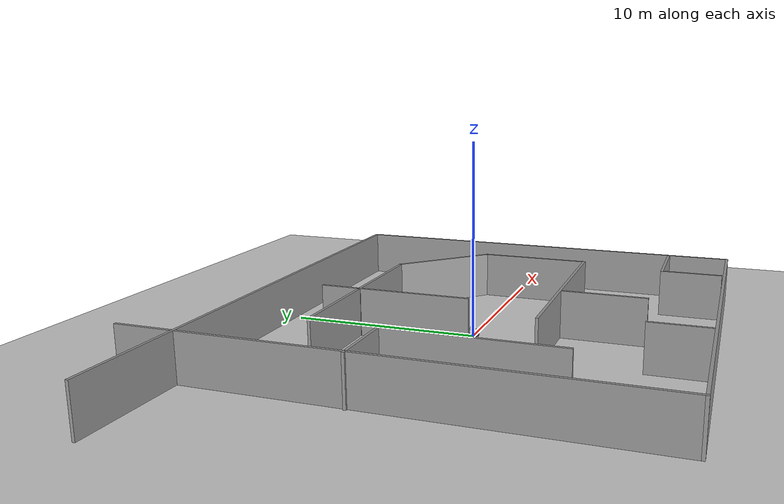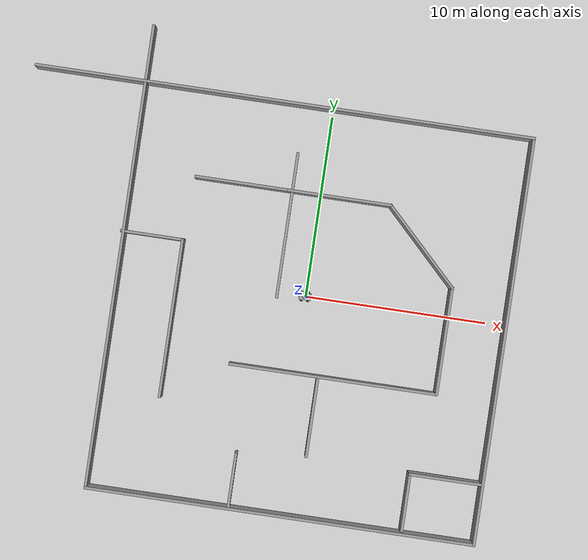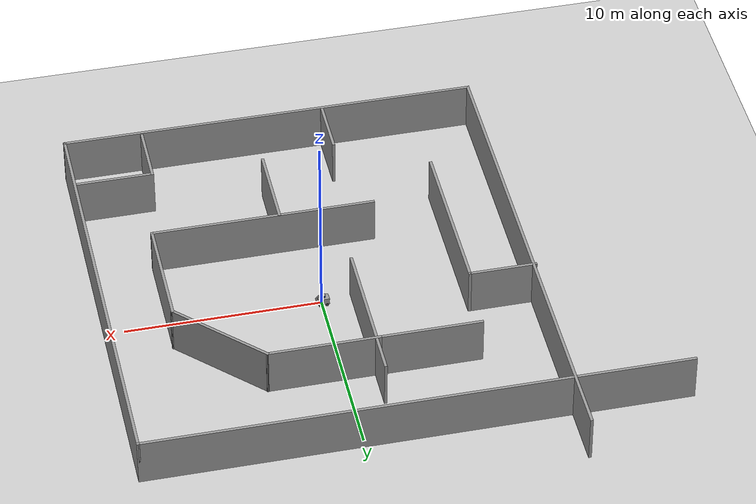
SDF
<sdf version="1.6">
 <arg name="world_name" value="$(find chetak_wc_description)/worlds/trial1.world"/>
 <world name="default">
  <light name="sun" type="directional">
   <pose>0 0 10 0 -0 0</pose>
   <diffuse>0.8 0.8 0.8 1</diffuse>
   <specular>0.2 0.2 0.2 1</specular>
   <attenuation>
    <range>1000</range>
    <constant>0.9</constant>
    <linear>0.01</linear>
    <quadratic>0.001</quadratic>
   </attenuation>
   <direction>-0.5 0.1 -0.9</direction>
  </light>
  <model name="ground_plane">
   <static>1</static>
   <link name="link">
    <collision name="collision">
     <geometry><plane><normal>0 0 1</normal><size>100 100</size></plane></geometry>
     <surface>
      <contact><collide_bitmask>65535</collide_bitmask></contact>
      <friction><ode><mu>100</mu><mu2>50</mu2></ode></friction>
     </surface>
    </collision>
    <visual name="visual">
     <cast_shadows>0</cast_shadows>
     <geometry><plane><normal>0 0 1</normal><size>100 100</size></plane></geometry>
     <material>
      <script><uri>file://media/materials/scripts/gazebo.material</uri><name>Gazebo/Grey</name></script>
     </material>
    </visual>
   </link>
  </model>
  <gravity>0 0 -9.8</gravity>
  <magnetic_field>6e-06 2.3e-05 -4.2e-05</magnetic_field>
  <atmosphere type="adiabatic"/>
  <physics name="default_physics" default="0" type="ode">
   <max_step_size>0.001</max_step_size>
   <real_time_factor>1</real_time_factor>
   <real_time_update_rate>1000</real_time_update_rate>
  </physics>
  <scene><ambient>0.4 0.4 0.4 1</ambient><background>0.7 0.7 0.7 1</background><shadows>1</shadows></scene>
  <audio><device>default</device></audio>
  <spherical_coordinates>
   <surface_model>EARTH_WGS84</surface_model>
   <latitude_deg>0</latitude_deg>
   <longitude_deg>0</longitude_deg>
   <elevation>0</elevation>
   <heading_deg>0</heading_deg>
  </spherical_coordinates>
  <model name="chetak_wc">
   <link name="base_link">
    <inertial>
     <pose>-0.36131 0.199977 0.277186 0 -0 0</pose>
     <mass>42.0188</mass>
     <inertia>
      <ixx>17.1146</ixx>
      <ixy>0.000253251</ixy>
      <ixz>0.679878</ixz>
      <iyy>28.5189</iyy>
      <iyz>2.14807e-05</iyz>
      <izz>29.9949</izz>
     </inertia>
    </inertial>
    <collision name="base_link_collision">
     <geometry>
      <mesh>
       <scale>0.001 0.001 0.001</scale>
       <uri>/home/sagar/catkin_ws/src/chetak_wc_description/meshes/base_link.stl</uri>
      </mesh>
     </geometry>
     <surface><friction><ode><mu>0.2</mu><mu2>0.2</mu2></ode></friction></surface>
    </collision>
    <collision name="base_link_fixed_joint_lump__uvc_rod__1_collision_1">
     <geometry>
      <mesh>
       <scale>0.001 0.001 0.001</scale>
       <uri>/home/sagar/catkin_ws/src/chetak_wc_description/meshes/uvc_rod__1.stl</uri>
      </mesh>
     </geometry>
     <surface><friction><ode><mu>0.2</mu><mu2>0.2</mu2></ode></friction></surface>
    </collision>
    <collision name="base_link_fixed_joint_lump__uvc_plate_1_collision_2">
     <geometry>
      <mesh>
       <scale>0.001 0.001 0.001</scale>
       <uri>/home/sagar/catkin_ws/src/chetak_wc_description/meshes/uvc_plate_1.stl</uri>
      </mesh>
     </geometry>
     <surface><friction><ode><mu>0.2</mu><mu2>0.2</mu2></ode></friction></surface>
    </collision>
    <collision name="base_link_fixed_joint_lump__lidar_1_collision_3">
     <geometry>
      <mesh>
       <scale>0.001 0.001 0.001</scale>
       <uri>/home/sagar/catkin_ws/src/chetak_wc_description/meshes/lidar_1.stl</uri>
      </mesh>
     </geometry>
     <surface><friction><ode><mu>0.2</mu><mu2>0.2</mu2></ode></friction></surface>
    </collision>
    <collision name="base_link_fixed_joint_lump__camera_1_collision_4">
     <geometry>
      <mesh>
       <scale>0.001 0.001 0.001</scale>
       <uri>/home/sagar/catkin_ws/src/chetak_wc_description/meshes/camera_1.stl</uri>
      </mesh>
     </geometry>
     <surface><friction><ode><mu>0.2</mu><mu2>0.2</mu2></ode></friction></surface>
    </collision>
    <collision name="base_link_fixed_joint_lump__name_1_collision_5">
     <geometry>
      <mesh>
       <scale>0.001 0.001 0.001</scale>
       <uri>/home/sagar/catkin_ws/src/chetak_wc_description/meshes/name_1.stl</uri>
      </mesh>
     </geometry>
     <surface><friction><ode><mu>0.2</mu><mu2>0.2</mu2></ode></friction></surface>
    </collision>
    <visual name="base_link_visual">
     <geometry>
      <mesh>
       <scale>0.001 0.001 0.001</scale>
       <uri>/home/sagar/catkin_ws/src/chetak_wc_description/meshes/base_link.stl</uri>
      </mesh>
     </geometry>
     <material>
      <script><name>Gazebo/Grey</name><uri>file://media/materials/scripts/gazebo.material</uri></script>
     </material>
    </visual>
    <visual name="base_link_fixed_joint_lump__uvc_rod__1_visual_1">
     <geometry>
      <mesh>
       <scale>0.001 0.001 0.001</scale>
       <uri>/home/sagar/catkin_ws/src/chetak_wc_description/meshes/uvc_rod__1.stl</uri>
      </mesh>
     </geometry>
     <material>
      <script><name>Gazebo/BlueGlow</name><uri>file://media/materials/scripts/gazebo.material</uri></script>
     </material>
    </visual>
    <visual name="base_link_fixed_joint_lump__uvc_plate_1_visual_2">
     <geometry>
      <mesh>
       <scale>0.001 0.001 0.001</scale>
       <uri>/home/sagar/catkin_ws/src/chetak_wc_description/meshes/uvc_plate_1.stl</uri>
      </mesh>
     </geometry>
     <material>
      <script><name>Gazebo/Grey</name><uri>file://media/materials/scripts/gazebo.material</uri></script>
     </material>
    </visual>
    <visual name="base_link_fixed_joint_lump__lidar_1_visual_3">
     <geometry>
      <mesh>
       <scale>0.001 0.001 0.001</scale>
       <uri>/home/sagar/catkin_ws/src/chetak_wc_description/meshes/lidar_1.stl</uri>
      </mesh>
     </geometry>
     <material>
      <script><name>Gazebo/White</name><uri>file://media/materials/scripts/gazebo.material</uri></script>
     </material>
    </visual>
    <visual name="base_link_fixed_joint_lump__camera_1_visual_4">
     <geometry>
      <mesh>
       <scale>0.001 0.001 0.001</scale>
       <uri>/home/sagar/catkin_ws/src/chetak_wc_description/meshes/camera_1.stl</uri>
      </mesh>
     </geometry>
     <material>
      <script><name>Gazebo/White</name><uri>file://media/materials/scripts/gazebo.material</uri></script>
     </material>
    </visual>
    <visual name="base_link_fixed_joint_lump__name_1_visual_5">
     <geometry>
      <mesh>
       <scale>0.001 0.001 0.001</scale>
       <uri>/home/sagar/catkin_ws/src/chetak_wc_description/meshes/name_1.stl</uri>
      </mesh>
     </geometry>
     <material>
      <script><name>Gazebo/White</name><uri>file://media/materials/scripts/gazebo.material</uri></script>
     </material>
    </visual>
    <sensor name="Lidar" type="gpu_ray">
     <visualize>1</visualize>
     <update_rate>40</update_rate>
     <ray>
      <scan>
       <horizontal>
        <samples>720</samples>
        <resolution>1</resolution>
        <min_angle>-1.5708</min_angle>
        <max_angle>1.5708</max_angle>
       </horizontal>
      </scan>
      <range><min>0.1</min><max>30</max><resolution>0.01</resolution></range>
      <noise><type>gaussian</type><mean>0</mean><stddev>0.01</stddev></noise>
     </ray>
     <plugin name="gazebo_ros_head_hokuyo_controller" filename="libgazebo_ros_gpu_laser.so">
      <topicName>/scan</topicName>
      <frameName>lidar_1</frameName>
      <robotNamespace>/</robotNamespace>
     </plugin>
     <pose>-0.015464 0.2 0.156443 0 -0 0</pose>
    </sensor>
    <self_collide>1</self_collide>
   </link>
   <link name="b_l_1">
    <pose>-0.525 0.48 0.075 0 -0 0</pose>
    <inertial>
     <pose>-0 -0.014828 0.000345 0 -0 0</pose>
     <mass>4.02291</mass>
     <inertia>
      <ixx>0.00623</ixx>
      <ixy>-0</ixy>
      <ixz>-0</ixz>
      <iyy>0.011756</iyy>
      <iyz>-3.4e-05</iyz>
      <izz>0.006161</izz>
     </inertia>
    </inertial>
    <collision name="b_l_1_collision">
     <pose>0.525 -0.48 -0.075 0 -0 0</pose>
     <geometry>
      <mesh>
       <scale>0.001 0.001 0.001</scale>
       <uri>/home/sagar/catkin_ws/src/chetak_wc_description/meshes/b_l_1.stl</uri>
      </mesh>
     </geometry>
     <surface><friction><ode><mu>0.2</mu><mu2>0.2</mu2></ode></friction></surface>
    </collision>
    <visual name="b_l_1_visual">
     <pose>0.525 -0.48 -0.075 0 -0 0</pose>
     <geometry>
      <mesh>
       <scale>0.001 0.001 0.001</scale>
       <uri>/home/sagar/catkin_ws/src/chetak_wc_description/meshes/b_l_1.stl</uri>
      </mesh>
     </geometry>
     <material>
      <script><name>Gazebo/DarkGrey</name><uri>file://media/materials/scripts/gazebo.material</uri></script>
     </material>
    </visual>
    <self_collide>1</self_collide>
   </link>
   <joint name="Rev10" type="revolute">
    <child>b_l_1</child>
    <parent>base_link</parent>
    <axis>
     <xyz>0 -1 0</xyz>
     <limit><lower>-1e+16</lower><upper>1e+16</upper></limit>
     <dynamics><spring_reference>0</spring_reference><spring_stiffness>0</spring_stiffness></dynamics>
     <use_parent_model_frame>1</use_parent_model_frame>
    </axis>
   </joint>
   <link name="b_r_1">
    <pose>-0.525 -0.08 0.075 0 -0 0</pose>
    <inertial>
     <pose>-0 0.014828 0.000345 0 -0 0</pose>
     <mass>4.02291</mass>
     <inertia>
      <ixx>0.00623</ixx>
      <ixy>0</ixy>
      <ixz>-0</ixz>
      <iyy>0.011756</iyy>
      <iyz>3.4e-05</iyz>
      <izz>0.006161</izz>
     </inertia>
    </inertial>
    <collision name="b_r_1_collision">
     <pose>0.525 0.08 -0.075 0 -0 0</pose>
     <geometry>
      <mesh>
       <scale>0.001 0.001 0.001</scale>
       <uri>/home/sagar/catkin_ws/src/chetak_wc_description/meshes/b_r_1.stl</uri>
      </mesh>
     </geometry>
     <surface><friction><ode><mu>0.2</mu><mu2>0.2</mu2></ode></friction></surface>
    </collision>
    <visual name="b_r_1_visual">
     <pose>0.525 0.08 -0.075 0 -0 0</pose>
     <geometry>
      <mesh>
       <scale>0.001 0.001 0.001</scale>
       <uri>/home/sagar/catkin_ws/src/chetak_wc_description/meshes/b_r_1.stl</uri>
      </mesh>
     </geometry>
     <material>
      <script><name>Gazebo/DarkGrey</name><uri>file://media/materials/scripts/gazebo.material</uri></script>
     </material>
    </visual>
    <self_collide>1</self_collide>
   </link>
   <joint name="Rev7" type="revolute">
    <child>b_r_1</child>
    <parent>base_link</parent>
    <axis>
     <xyz>0 -1 0</xyz>
     <limit><lower>-1e+16</lower><upper>1e+16</upper></limit>
     <dynamics><spring_reference>0</spring_reference><spring_stiffness>0</spring_stiffness></dynamics>
     <use_parent_model_frame>1</use_parent_model_frame>
    </axis>
   </joint>
   <link name="f_l_1">
    <pose>-0.175 0.48 0.075 0 -0 0</pose>
    <inertial>
     <pose>-0 -0.024855 0.000207 0 -0 0</pose>
     <mass>6.68635</mass>
     <inertia>
      <ixx>0.01123</ixx>
      <ixy>-0</ixy>
      <ixz>-0</ixz>
      <iyy>0.019546</iyy>
      <iyz>-4.8e-05</iyz>
      <izz>0.011161</izz>
     </inertia>
    </inertial>
    <collision name="f_l_1_collision">
     <pose>0.175 -0.48 -0.075 0 -0 0</pose>
     <geometry>
      <mesh>
       <scale>0.001 0.001 0.001</scale>
       <uri>/home/sagar/catkin_ws/src/chetak_wc_description/meshes/f_l_1.stl</uri>
      </mesh>
     </geometry>
     <surface><friction><ode><mu>0.2</mu><mu2>0.2</mu2></ode></friction></surface>
    </collision>
    <visual name="f_l_1_visual">
     <pose>0.175 -0.48 -0.075 0 -0 0</pose>
     <geometry>
      <mesh>
       <scale>0.001 0.001 0.001</scale>
       <uri>/home/sagar/catkin_ws/src/chetak_wc_description/meshes/f_l_1.stl</uri>
      </mesh>
     </geometry>
     <material>
      <script><name>Gazebo/DarkGrey</name><uri>file://media/materials/scripts/gazebo.material</uri></script>
     </material>
    </visual>
    <self_collide>1</self_collide>
   </link>
   <joint name="Rev8" type="revolute">
    <child>f_l_1</child>
    <parent>base_link</parent>
    <axis>
     <xyz>0 -1 0</xyz>
     <limit><lower>-1e+16</lower><upper>1e+16</upper></limit>
     <dynamics><spring_reference>0</spring_reference><spring_stiffness>0</spring_stiffness></dynamics>
     <use_parent_model_frame>1</use_parent_model_frame>
    </axis>
   </joint>
   <link name="f_r_1">
    <pose>-0.175 -0.08 0.075 0 -0 0</pose>
    <inertial>
     <pose>-0 0.024855 0.000207 0 -0 0</pose>
     <mass>6.68635</mass>
     <inertia>
      <ixx>0.01123</ixx>
      <ixy>0</ixy>
      <ixz>-0</ixz>
      <iyy>0.019546</iyy>
      <iyz>4.8e-05</iyz>
      <izz>0.011161</izz>
     </inertia>
    </inertial>
    <collision name="f_r_1_collision">
     <pose>0.175 0.08 -0.075 0 -0 0</pose>
     <geometry>
      <mesh>
       <scale>0.001 0.001 0.001</scale>
       <uri>/home/sagar/catkin_ws/src/chetak_wc_description/meshes/f_r_1.stl</uri>
      </mesh>
     </geometry>
     <surface><friction><ode><mu>0.2</mu><mu2>0.2</mu2></ode></friction></surface>
    </collision>
    <visual name="f_r_1_visual">
     <pose>0.175 0.08 -0.075 0 -0 0</pose>
     <geometry>
      <mesh>
       <scale>0.001 0.001 0.001</scale>
       <uri>/home/sagar/catkin_ws/src/chetak_wc_description/meshes/f_r_1.stl</uri>
      </mesh>
     </geometry>
     <material>
      <script><name>Gazebo/DarkGrey</name><uri>file://media/materials/scripts/gazebo.material</uri></script>
     </material>
    </visual>
    <self_collide>1</self_collide>
   </link>
   <joint name="Rev9" type="revolute">
    <child>f_r_1</child>
    <parent>base_link</parent>
    <axis>
     <xyz>0 -1 0</xyz>
     <limit><lower>-1e+16</lower><upper>1e+16</upper></limit>
     <dynamics><spring_reference>0</spring_reference><spring_stiffness>0</spring_stiffness></dynamics>
     <use_parent_model_frame>1</use_parent_model_frame>
    </axis>
   </joint>
   <static>0</static>
   <plugin name="differential_drive_controller" filename="libgazebo_ros_diff_drive.so">
    <legacyMode>0</legacyMode>
    <alwaysOn>1</alwaysOn>
    <updateRate>10</updateRate>
    <leftJoint>Rev8</leftJoint>
    <leftJoint>Rev10</leftJoint>
    <rightJoint>Rev7</rightJoint>
    <rightJoint>Rev9</rightJoint>
    <wheelSeparation>0.64</wheelSeparation>
    <wheelDiameter>0.3</wheelDiameter>
    <torque>0.9</torque>
    <commandTopic>cmd_vel</commandTopic>
    <odometryTopic>odom</odometryTopic>
    <odometryFrame>odom</odometryFrame>
    <robotBaseFrame>base_link</robotBaseFrame>
    <publishWheelTF>1</publishWheelTF>
    <publishWheelJointState>1</publishWheelJointState>
    <robotNamespace>/</robotNamespace>
   </plugin>
   <pose>0.295094 -0.16533 -6.6e-05 4.6e-05 -3.2e-05 0.022445</pose>
  </model>
  <model name="Untitled">
   <pose>-2.68251 0.67595 0 0 -0 0</pose>
   <link name="Wall_10">
    <collision name="Wall_10_Collision">
     <geometry><box><size>5.75 0.15 2.5</size></box></geometry>
     <pose>0 0 1.25 0 -0 0</pose>
    </collision>
    <visual name="Wall_10_Visual">
     <pose>0 0 1.25 0 -0 0</pose>
     <geometry><box><size>5.75 0.15 2.5</size></box></geometry>
     <material>
      <script><uri>file://media/materials/scripts/gazebo.material</uri><name>Gazebo/Grey</name></script>
      <ambient>1 1 1 1</ambient>
     </material>
     <meta><layer>0</layer></meta>
    </visual>
    <pose>3.70711 4.93735 0 0 -0 0</pose>
   </link>
   <link name="Wall_11">
    <collision name="Wall_11_Collision">
     <geometry><box><size>5.75 0.15 2.5</size></box></geometry>
     <pose>0 0 1.25 0 -0 0</pose>
    </collision>
    <visual name="Wall_11_Visual">
     <pose>0 0 1.25 0 -0 0</pose>
     <geometry><box><size>5.75 0.15 2.5</size></box></geometry>
     <material>
      <script><uri>file://media/materials/scripts/gazebo.material</uri><name>Gazebo/Grey</name></script>
      <ambient>1 1 1 1</ambient>
     </material>
     <meta><layer>0</layer></meta>
    </visual>
    <pose>8.487 2.95745 0 0 -0 -0.785398</pose>
   </link>
   <link name="Wall_12">
    <collision name="Wall_12_Collision">
     <geometry><box><size>6 0.15 2.5</size></box></geometry>
     <pose>0 0 1.25 0 -0 0</pose>
    </collision>
    <visual name="Wall_12_Visual">
     <pose>0 0 1.25 0 -0 0</pose>
     <geometry><box><size>6 0.15 2.5</size></box></geometry>
     <material>
      <script><uri>file://media/materials/scripts/gazebo.material</uri><name>Gazebo/Grey</name></script>
      <ambient>1 1 1 1</ambient>
     </material>
     <meta><layer>0</layer></meta>
    </visual>
    <pose>10.4669 -1.94744 0 0 -0 -1.5708</pose>
   </link>
   <link name="Wall_13">
    <collision name="Wall_13_Collision">
     <geometry><box><size>11.5 0.15 2.5</size></box></geometry>
     <pose>0 0 1.25 0 -0 0</pose>
    </collision>
    <visual name="Wall_13_Visual">
     <pose>0 0 1.25 0 -0 0</pose>
     <geometry><box><size>11.5 0.15 2.5</size></box></geometry>
     <material>
      <script><uri>file://media/materials/scripts/gazebo.material</uri><name>Gazebo/Grey</name></script>
      <ambient>1 1 1 1</ambient>
     </material>
     <meta><layer>0</layer></meta>
    </visual>
    <pose>4.7919 -4.87244 0 0 -0 3.14159</pose>
   </link>
   <link name="Wall_15">
    <collision name="Wall_15_Collision">
     <geometry><box><size>8 0.15 2.5</size></box></geometry>
     <pose>0 0 1.25 0 -0 0</pose>
    </collision>
    <visual name="Wall_15_Visual">
     <pose>0 0 1.25 0 -0 0</pose>
     <geometry><box><size>8 0.15 2.5</size></box></geometry>
     <material>
      <script><uri>file://media/materials/scripts/gazebo.material</uri><name>Gazebo/Grey</name></script>
      <ambient>1 1 1 1</ambient>
     </material>
     <meta><layer>0</layer></meta>
    </visual>
    <pose>1.09169 3.04277 0 0 -0 -1.5708</pose>
   </link>
   <link name="Wall_17">
    <collision name="Wall_17_Collision">
     <geometry><box><size>3.5 0.15 2.5</size></box></geometry>
     <pose>0 0 1.25 0 -0 0</pose>
    </collision>
    <visual name="Wall_17_Visual">
     <pose>0 0 1.25 0 -0 0</pose>
     <geometry><box><size>3.5 0.15 2.5</size></box></geometry>
     <material>
      <script><uri>file://media/materials/scripts/gazebo.material</uri><name>Gazebo/Grey</name></script>
      <ambient>1 1 1 1</ambient>
     </material>
     <meta><layer>0</layer></meta>
    </visual>
    <pose>-6.09333 1.43026 0 0 -0 0</pose>
   </link>
   <link name="Wall_18">
    <collision name="Wall_18_Collision">
     <geometry><box><size>8.75 0.15 2.5</size></box></geometry>
     <pose>0 0 1.25 0 -0 0</pose>
    </collision>
    <visual name="Wall_18_Visual">
     <pose>0 0 1.25 0 -0 0</pose>
     <geometry><box><size>8.75 0.15 2.5</size></box></geometry>
     <material>
      <script><uri>file://media/materials/scripts/gazebo.material</uri><name>Gazebo/Grey</name></script>
      <ambient>1 1 1 1</ambient>
     </material>
     <meta><layer>0</layer></meta>
    </visual>
    <pose>-4.41832 -2.86973 0 0 -0 -1.5708</pose>
   </link>
   <link name="Wall_21">
    <collision name="Wall_21_Collision">
     <geometry><box><size>5.25 0.15 2.5</size></box></geometry>
     <pose>0 0 1.25 0 -0 0</pose>
    </collision>
    <visual name="Wall_21_Visual">
     <pose>0 0 1.25 0 -0 0</pose>
     <geometry><box><size>5.25 0.15 2.5</size></box></geometry>
     <material>
      <script><uri>file://media/materials/scripts/gazebo.material</uri><name>Gazebo/Grey</name></script>
      <ambient>1 1 1 1</ambient>
     </material>
     <meta><layer>0</layer></meta>
    </visual>
    <pose>-1.64289 4.93735 0 0 -0 3.14159</pose>
   </link>
   <link name="Wall_23">
    <collision name="Wall_23_Collision">
     <geometry><box><size>3 0.15 2.5</size></box></geometry>
     <pose>0 0 1.25 0 -0 0</pose>
    </collision>
    <visual name="Wall_23_Visual">
     <pose>0 0 1.25 0 -0 0</pose>
     <geometry><box><size>3 0.15 2.5</size></box></geometry>
     <material>
      <script><uri>file://media/materials/scripts/gazebo.material</uri><name>Gazebo/Grey</name></script>
      <ambient>1 1 1 1</ambient>
     </material>
     <meta><layer>0</layer></meta>
    </visual>
    <pose>0.156025 -11.0996 0 0 -0 1.5708</pose>
   </link>
   <link name="Wall_25">
    <collision name="Wall_25_Collision">
     <geometry><box><size>4.5 0.15 2.5</size></box></geometry>
     <pose>0 0 1.25 0 -0 0</pose>
    </collision>
    <visual name="Wall_25_Visual">
     <pose>0 0 1.25 0 -0 0</pose>
     <geometry><box><size>4.5 0.15 2.5</size></box></geometry>
     <material>
      <script><uri>file://media/materials/scripts/gazebo.material</uri><name>Gazebo/Grey</name></script>
      <ambient>1 1 1 1</ambient>
     </material>
     <meta><layer>0</layer></meta>
    </visual>
    <pose>3.9547 -7.04871 0 0 -0 -1.5708</pose>
   </link>
   <link name="Wall_27">
    <collision name="Wall_27_Collision">
     <geometry><box><size>3.25 0.15 2.5</size></box></geometry>
     <pose>0 0 1.25 0 -0 0</pose>
    </collision>
    <visual name="Wall_27_Visual">
     <pose>0 0 1.25 0 -0 0</pose>
     <geometry><box><size>3.25 0.15 2.5</size></box></geometry>
     <material>
      <script><uri>file://media/materials/scripts/gazebo.material</uri><name>Gazebo/Grey</name></script>
      <ambient>1 1 1 1</ambient>
     </material>
     <meta><layer>0</layer></meta>
    </visual>
    <pose>9.67947 -10.9211 0 0 -0 1.5708</pose>
   </link>
   <link name="Wall_28">
    <collision name="Wall_28_Collision">
     <geometry><box><size>4 0.15 2.5</size></box></geometry>
     <pose>0 0 1.25 0 -0 0</pose>
    </collision>
    <visual name="Wall_28_Visual">
     <pose>0 0 1.25 0 -0 0</pose>
     <geometry><box><size>4 0.15 2.5</size></box></geometry>
     <material>
      <script><uri>file://media/materials/scripts/gazebo.material</uri><name>Gazebo/Grey</name></script>
      <ambient>1 1 1 1</ambient>
     </material>
     <meta><layer>0</layer></meta>
    </visual>
    <pose>11.6045 -9.37106 0 0 -0 0</pose>
   </link>
   <link name="Wall_5">
    <collision name="Wall_5_Collision">
     <geometry><box><size>27.5 0.15 2.5</size></box></geometry>
     <pose>0 0 1.25 0 -0 0</pose>
    </collision>
    <visual name="Wall_5_Visual">
     <pose>0 0 1.25 0 -0 0</pose>
     <geometry><box><size>27.5 0.15 2.5</size></box></geometry>
     <material>
      <script><uri>file://media/materials/scripts/gazebo.material</uri><name>Gazebo/Grey</name></script>
      <ambient>1 1 1 1</ambient>
     </material>
     <meta><layer>0</layer></meta>
    </visual>
    <pose>-0 9.675 0 0 -0 0</pose>
   </link>
   <link name="Wall_6">
    <collision name="Wall_6_Collision">
     <geometry><box><size>22.5 0.15 2.5</size></box></geometry>
     <pose>0 0 1.25 0 -0 0</pose>
    </collision>
    <visual name="Wall_6_Visual">
     <pose>0 0 1.25 0 -0 0</pose>
     <geometry><box><size>22.5 0.15 2.5</size></box></geometry>
     <material>
      <script><uri>file://media/materials/scripts/gazebo.material</uri><name>Gazebo/Grey</name></script>
      <ambient>1 1 1 1</ambient>
     </material>
     <meta><layer>0</layer></meta>
    </visual>
    <pose>13.675 -1.5 0 0 -0 -1.5708</pose>
   </link>
   <link name="Wall_7">
    <collision name="Wall_7_Collision">
     <geometry><box><size>21.5 0.15 2.5</size></box></geometry>
     <pose>0 0 1.25 0 -0 0</pose>
    </collision>
    <visual name="Wall_7_Visual">
     <pose>0 0 1.25 0 -0 0</pose>
     <geometry><box><size>21.5 0.15 2.5</size></box></geometry>
     <material>
      <script><uri>file://media/materials/scripts/gazebo.material</uri><name>Gazebo/Grey</name></script>
      <ambient>1 1 1 1</ambient>
     </material>
     <meta><layer>0</layer></meta>
    </visual>
    <pose>3 -12.675 0 0 -0 3.14159</pose>
   </link>
   <link name="Wall_8">
    <collision name="Wall_8_Collision">
     <geometry><box><size>25.5 0.15 2.5</size></box></geometry>
     <pose>0 0 1.25 0 -0 0</pose>
    </collision>
    <visual name="Wall_8_Visual">
     <pose>0 0 1.25 0 -0 0</pose>
     <geometry><box><size>25.5 0.15 2.5</size></box></geometry>
     <material>
      <script><uri>file://media/materials/scripts/gazebo.material</uri><name>Gazebo/Grey</name></script>
      <ambient>1 1 1 1</ambient>
     </material>
     <meta><layer>0</layer></meta>
    </visual>
    <pose>-7.675 0 0 0 -0 1.5708</pose>
   </link>
   <static>1</static>
  </model>
 </world>
</sdf>
